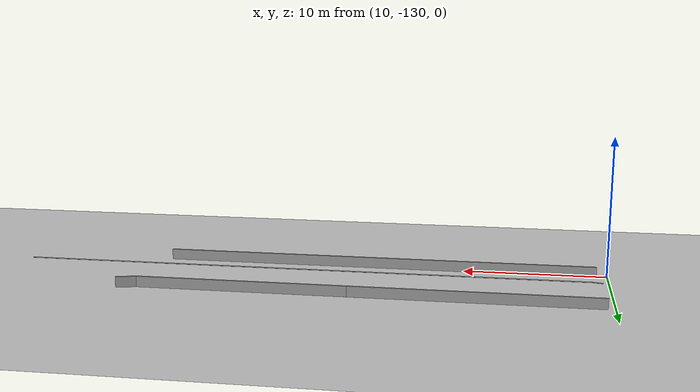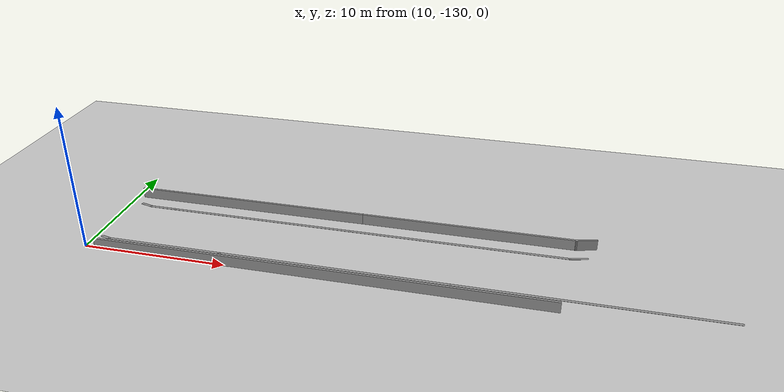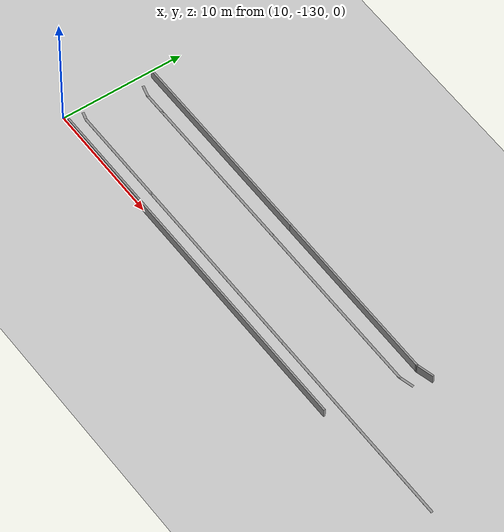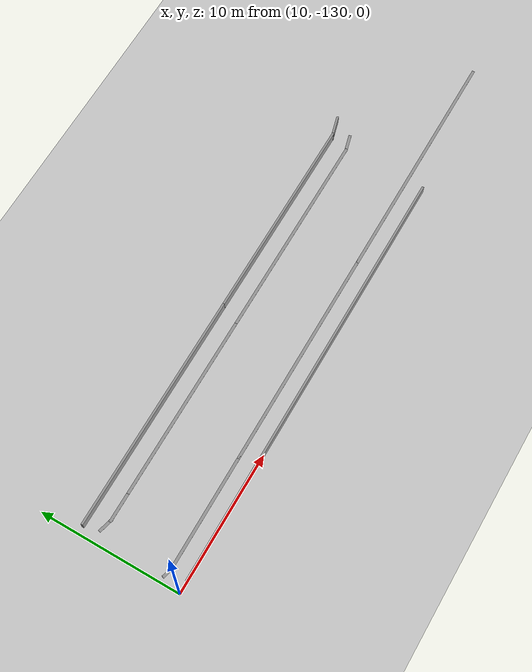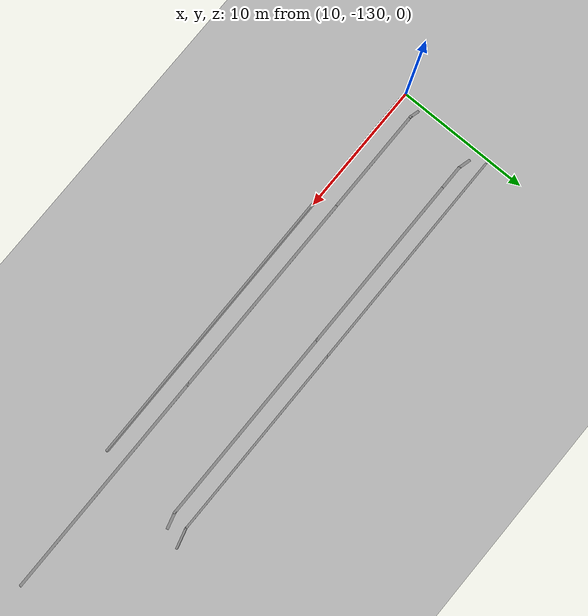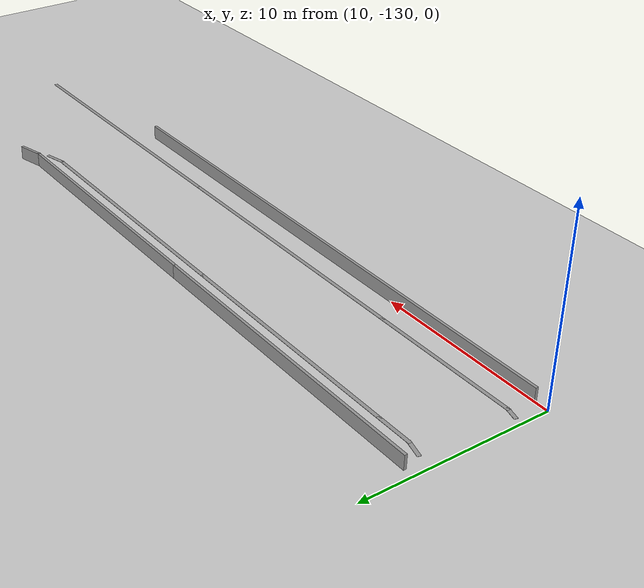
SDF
<sdf version="1.6">
 <world name="default">
  <model name="ground_plane">
   <static>1</static>
   <link name="link">
    <collision name="collision">
     <geometry><plane><normal>0 0 1</normal><size>100 100</size></plane></geometry>
     <surface>
      <contact><collide_bitmask>65535</collide_bitmask></contact>
      <friction><ode><mu>100</mu><mu2>50</mu2></ode></friction>
     </surface>
    </collision>
    <visual name="visual">
     <cast_shadows>0</cast_shadows>
     <geometry><plane><normal>0 0 1</normal><size>100 100</size></plane></geometry>
     <material>
      <script><uri>file://media/materials/scripts/gazebo.material</uri><name>Gazebo/Grey</name></script>
     </material>
    </visual>
   </link>
  </model>
  <model name="GercekDuvarSeritKoyu1">
   <link name="Wall_136">
    <pose>67.9791 -41.0376 0 0 -0 1.5708</pose>
    <inertial>
     <mass>1</mass>
     <inertia><ixx>1</ixx><ixy>0</ixy><ixz>0</ixz><iyy>1</iyy><iyz>0</iyz><izz>1</izz></inertia>
    </inertial>
    <visual name="Wall_136_Visual">
     <pose>0 0 0.375 0 -0 0</pose>
     <geometry><box><size>17 0.15 0.75</size></box></geometry>
     <material>
      <script><uri>file://media/materials/scripts/gazebo.material</uri><name>Gazebo/Grey</name></script>
      <ambient>0.5 0.5 0.5 1</ambient>
      <shader type="pixel"><normal_map>__default__</normal_map></shader>
      <diffuse>0.7 0.7 0.7 1</diffuse>
      <specular>0.01 0.01 0.01 1</specular>
      <emissive>0 0 0 1</emissive>
     </material>
     <meta><layer>0</layer></meta>
    </visual>
    <collision name="Wall_136_Collision">
     <pose>0 0 0.375 0 -0 0</pose>
     <geometry><box><size>17 0.15 0.75</size></box></geometry>
     <surface>
      <friction>
       <ode><mu>1</mu><mu2>1</mu2><fdir1>0 0 0</fdir1><slip1>0</slip1><slip2>0</slip2></ode>
       <torsional>
        <coefficient>1</coefficient>
        <patch_radius>0</patch_radius>
        <surface_radius>0</surface_radius>
        <use_patch_radius>1</use_patch_radius>
        <ode><slip>0</slip></ode>
       </torsional>
      </friction>
      <bounce><restitution_coefficient>0</restitution_coefficient><threshold>1e+06</threshold></bounce>
      <contact>
       <collide_without_contact>0</collide_without_contact>
       <collide_without_contact_bitmask>1</collide_without_contact_bitmask>
       <collide_bitmask>1</collide_bitmask>
       <ode>
        <soft_cfm>0</soft_cfm>
        <soft_erp>0.2</soft_erp>
        <kp>1e+13</kp>
        <kd>1</kd>
        <max_vel>0.01</max_vel>
        <min_depth>0</min_depth>
       </ode>
       <bullet>
        <split_impulse>1</split_impulse>
        <split_impulse_penetration_threshold>-0.01</split_impulse_penetration_threshold>
        <soft_cfm>0</soft_cfm>
        <soft_erp>0.2</soft_erp>
        <kp>1e+13</kp>
        <kd>1</kd>
       </bullet>
      </contact>
     </surface>
    </collision>
   </link>
   <link name="Wall_138">
    <pose>67.9791 -25.3126 0 0 -0 1.5708</pose>
    <inertial>
     <mass>1</mass>
     <inertia><ixx>1</ixx><ixy>0</ixy><ixz>0</ixz><iyy>1</iyy><iyz>0</iyz><izz>1</izz></inertia>
    </inertial>
    <visual name="Wall_138_Visual">
     <pose>0 0 0.375 0 -0 0</pose>
     <geometry><box><size>14.75 0.15 0.75</size></box></geometry>
     <material>
      <script><uri>file://media/materials/scripts/gazebo.material</uri><name>Gazebo/Grey</name></script>
      <ambient>0.5 0.5 0.5 1</ambient>
      <shader type="pixel"><normal_map>__default__</normal_map></shader>
      <diffuse>0.7 0.7 0.7 1</diffuse>
      <specular>0.01 0.01 0.01 1</specular>
      <emissive>0 0 0 1</emissive>
     </material>
     <meta><layer>0</layer></meta>
    </visual>
    <collision name="Wall_138_Collision">
     <pose>0 0 0.375 0 -0 0</pose>
     <geometry><box><size>14.75 0.15 0.75</size></box></geometry>
     <surface>
      <friction>
       <ode><mu>1</mu><mu2>1</mu2><fdir1>0 0 0</fdir1><slip1>0</slip1><slip2>0</slip2></ode>
       <torsional>
        <coefficient>1</coefficient>
        <patch_radius>0</patch_radius>
        <surface_radius>0</surface_radius>
        <use_patch_radius>1</use_patch_radius>
        <ode><slip>0</slip></ode>
       </torsional>
      </friction>
      <bounce><restitution_coefficient>0</restitution_coefficient><threshold>1e+06</threshold></bounce>
      <contact>
       <collide_without_contact>0</collide_without_contact>
       <collide_without_contact_bitmask>1</collide_without_contact_bitmask>
       <collide_bitmask>1</collide_bitmask>
       <ode>
        <soft_cfm>0</soft_cfm>
        <soft_erp>0.2</soft_erp>
        <kp>1e+13</kp>
        <kd>1</kd>
        <max_vel>0.01</max_vel>
        <min_depth>0</min_depth>
       </ode>
       <bullet>
        <split_impulse>1</split_impulse>
        <split_impulse_penetration_threshold>-0.01</split_impulse_penetration_threshold>
        <soft_cfm>0</soft_cfm>
        <soft_erp>0.2</soft_erp>
        <kp>1e+13</kp>
        <kd>1</kd>
       </bullet>
      </contact>
     </surface>
    </collision>
   </link>
   <link name="Wall_140">
    <pose>67.8041 -17.3606 0 0 -0 1.83302</pose>
    <inertial>
     <mass>1</mass>
     <inertia><ixx>1</ixx><ixy>0</ixy><ixz>0</ixz><iyy>1</iyy><iyz>0</iyz><izz>1</izz></inertia>
    </inertial>
    <visual name="Wall_140_Visual">
     <pose>0 0 0.375 0 -0 0</pose>
     <geometry><box><size>1.5 0.15 0.75</size></box></geometry>
     <material>
      <script><uri>file://media/materials/scripts/gazebo.material</uri><name>Gazebo/Grey</name></script>
      <ambient>0.5 0.5 0.5 1</ambient>
      <shader type="pixel"><normal_map>__default__</normal_map></shader>
      <diffuse>0.7 0.7 0.7 1</diffuse>
      <specular>0.01 0.01 0.01 1</specular>
      <emissive>0 0 0 1</emissive>
     </material>
     <meta><layer>0</layer></meta>
    </visual>
    <collision name="Wall_140_Collision">
     <pose>0 0 0.375 0 -0 0</pose>
     <geometry><box><size>1.5 0.15 0.75</size></box></geometry>
     <surface>
      <friction>
       <ode><mu>1</mu><mu2>1</mu2><fdir1>0 0 0</fdir1><slip1>0</slip1><slip2>0</slip2></ode>
       <torsional>
        <coefficient>1</coefficient>
        <patch_radius>0</patch_radius>
        <surface_radius>0</surface_radius>
        <use_patch_radius>1</use_patch_radius>
        <ode><slip>0</slip></ode>
       </torsional>
      </friction>
      <bounce><restitution_coefficient>0</restitution_coefficient><threshold>1e+06</threshold></bounce>
      <contact>
       <collide_without_contact>0</collide_without_contact>
       <collide_without_contact_bitmask>1</collide_without_contact_bitmask>
       <collide_bitmask>1</collide_bitmask>
       <ode>
        <soft_cfm>0</soft_cfm>
        <soft_erp>0.2</soft_erp>
        <kp>1e+13</kp>
        <kd>1</kd>
        <max_vel>0.01</max_vel>
        <min_depth>0</min_depth>
       </ode>
       <bullet>
        <split_impulse>1</split_impulse>
        <split_impulse_penetration_threshold>-0.01</split_impulse_penetration_threshold>
        <soft_cfm>0</soft_cfm>
        <soft_erp>0.2</soft_erp>
        <kp>1e+13</kp>
        <kd>1</kd>
       </bullet>
      </contact>
     </surface>
    </collision>
   </link>
   <link name="Wall_17">
    <pose>75.2501 -33.9316 0 0 -0 1.5708</pose>
    <inertial>
     <mass>1</mass>
     <inertia><ixx>1</ixx><ixy>0</ixy><ixz>0</ixz><iyy>1</iyy><iyz>0</iyz><izz>1</izz></inertia>
    </inertial>
    <visual name="Wall_17_Visual">
     <pose>0 0 0.375 0 -0 0</pose>
     <geometry><box><size>30.75 0.15 0.75</size></box></geometry>
     <material>
      <script><uri>file://media/materials/scripts/gazebo.material</uri><name>Gazebo/Grey</name></script>
      <ambient>0.5 0.5 0.5 1</ambient>
      <shader type="pixel"><normal_map>__default__</normal_map></shader>
      <diffuse>0.7 0.7 0.7 1</diffuse>
      <specular>0.01 0.01 0.01 1</specular>
      <emissive>0 0 0 1</emissive>
     </material>
     <meta><layer>0</layer></meta>
    </visual>
    <collision name="Wall_17_Collision">
     <pose>0 0 0.375 0 -0 0</pose>
     <geometry><box><size>30.75 0.15 0.75</size></box></geometry>
     <surface>
      <friction>
       <ode><mu>1</mu><mu2>1</mu2><fdir1>0 0 0</fdir1><slip1>0</slip1><slip2>0</slip2></ode>
       <torsional>
        <coefficient>1</coefficient>
        <patch_radius>0</patch_radius>
        <surface_radius>0</surface_radius>
        <use_patch_radius>1</use_patch_radius>
        <ode><slip>0</slip></ode>
       </torsional>
      </friction>
      <bounce><restitution_coefficient>0</restitution_coefficient><threshold>1e+06</threshold></bounce>
      <contact>
       <collide_without_contact>0</collide_without_contact>
       <collide_without_contact_bitmask>1</collide_without_contact_bitmask>
       <collide_bitmask>1</collide_bitmask>
       <ode>
        <soft_cfm>0</soft_cfm>
        <soft_erp>0.2</soft_erp>
        <kp>1e+13</kp>
        <kd>1</kd>
        <max_vel>0.01</max_vel>
        <min_depth>0</min_depth>
       </ode>
       <bullet>
        <split_impulse>1</split_impulse>
        <split_impulse_penetration_threshold>-0.01</split_impulse_penetration_threshold>
        <soft_cfm>0</soft_cfm>
        <soft_erp>0.2</soft_erp>
        <kp>1e+13</kp>
        <kd>1</kd>
       </bullet>
      </contact>
     </surface>
    </collision>
   </link>
   <link name="Wall_257">
    <pose>73.8996 -49.2906 0 0 -0 1.30966</pose>
    <visual name="Wall_257_Visual">
     <pose>0 0 0.005 0 -0 0</pose>
     <geometry><box><size>0.800673 0.2 0.01</size></box></geometry>
     <material>
      <script><uri>file://media/materials/scripts/gazebo.material</uri><name>Gazebo/Grey</name></script>
      <ambient>1 1 1 1</ambient>
      <shader type="pixel"/>
     </material>
     <meta><layer>0</layer></meta>
    </visual>
    <collision name="Wall_257_Collision">
     <pose>0 0 0.005 0 -0 0</pose>
     <geometry><box><size>0.800673 0.2 0.01</size></box></geometry>
     <surface>
      <friction>
       <ode><mu>1</mu><mu2>1</mu2><fdir1>0 0 0</fdir1><slip1>0</slip1><slip2>0</slip2></ode>
       <torsional>
        <coefficient>1</coefficient>
        <patch_radius>0</patch_radius>
        <surface_radius>0</surface_radius>
        <use_patch_radius>1</use_patch_radius>
        <ode><slip>0</slip></ode>
       </torsional>
      </friction>
      <bounce><restitution_coefficient>0</restitution_coefficient><threshold>1e+06</threshold></bounce>
      <contact>
       <collide_without_contact>0</collide_without_contact>
       <collide_without_contact_bitmask>1</collide_without_contact_bitmask>
       <collide_bitmask>1</collide_bitmask>
       <ode>
        <soft_cfm>0</soft_cfm>
        <soft_erp>0.2</soft_erp>
        <kp>1e+13</kp>
        <kd>1</kd>
        <max_vel>0.01</max_vel>
        <min_depth>0</min_depth>
       </ode>
       <bullet>
        <split_impulse>1</split_impulse>
        <split_impulse_penetration_threshold>-0.01</split_impulse_penetration_threshold>
        <soft_cfm>0</soft_cfm>
        <soft_erp>0.2</soft_erp>
        <kp>1e+13</kp>
        <kd>1</kd>
       </bullet>
      </contact>
     </surface>
    </collision>
   </link>
   <link name="Wall_258">
    <pose>73.9771 -44.9621 0 0 -0 1.5708</pose>
    <visual name="Wall_258_Visual">
     <pose>0 0 0.005 0 -0 0</pose>
     <geometry><box><size>8.277 0.2 0.01</size></box></geometry>
     <material>
      <script><uri>file://media/materials/scripts/gazebo.material</uri><name>Gazebo/Grey</name></script>
      <ambient>1 1 1 1</ambient>
      <shader type="pixel"/>
     </material>
     <meta><layer>0</layer></meta>
    </visual>
    <collision name="Wall_258_Collision">
     <pose>0 0 0.005 0 -0 0</pose>
     <geometry><box><size>8.277 0.2 0.01</size></box></geometry>
     <surface>
      <friction>
       <ode><mu>1</mu><mu2>1</mu2><fdir1>0 0 0</fdir1><slip1>0</slip1><slip2>0</slip2></ode>
       <torsional>
        <coefficient>1</coefficient>
        <patch_radius>0</patch_radius>
        <surface_radius>0</surface_radius>
        <use_patch_radius>1</use_patch_radius>
        <ode><slip>0</slip></ode>
       </torsional>
      </friction>
      <bounce><restitution_coefficient>0</restitution_coefficient><threshold>1e+06</threshold></bounce>
      <contact>
       <collide_without_contact>0</collide_without_contact>
       <collide_without_contact_bitmask>1</collide_without_contact_bitmask>
       <collide_bitmask>1</collide_bitmask>
       <ode>
        <soft_cfm>0</soft_cfm>
        <soft_erp>0.2</soft_erp>
        <kp>1e+13</kp>
        <kd>1</kd>
        <max_vel>0.01</max_vel>
        <min_depth>0</min_depth>
       </ode>
       <bullet>
        <split_impulse>1</split_impulse>
        <split_impulse_penetration_threshold>-0.01</split_impulse_penetration_threshold>
        <soft_cfm>0</soft_cfm>
        <soft_erp>0.2</soft_erp>
        <kp>1e+13</kp>
        <kd>1</kd>
       </bullet>
      </contact>
     </surface>
    </collision>
   </link>
   <link name="Wall_260">
    <pose>73.9771 -33.1236 0 0 -0 1.5708</pose>
    <visual name="Wall_260_Visual">
     <pose>0 0 0.005 0 -0 0</pose>
     <geometry><box><size>15.8 0.2 0.01</size></box></geometry>
     <material>
      <script><uri>file://media/materials/scripts/gazebo.material</uri><name>Gazebo/Grey</name></script>
      <ambient>1 1 1 1</ambient>
      <shader type="pixel"/>
     </material>
     <meta><layer>0</layer></meta>
    </visual>
    <collision name="Wall_260_Collision">
     <pose>0 0 0.005 0 -0 0</pose>
     <geometry><box><size>15.8 0.2 0.01</size></box></geometry>
     <surface>
      <friction>
       <ode><mu>1</mu><mu2>1</mu2><fdir1>0 0 0</fdir1><slip1>0</slip1><slip2>0</slip2></ode>
       <torsional>
        <coefficient>1</coefficient>
        <patch_radius>0</patch_radius>
        <surface_radius>0</surface_radius>
        <use_patch_radius>1</use_patch_radius>
        <ode><slip>0</slip></ode>
       </torsional>
      </friction>
      <bounce><restitution_coefficient>0</restitution_coefficient><threshold>1e+06</threshold></bounce>
      <contact>
       <collide_without_contact>0</collide_without_contact>
       <collide_without_contact_bitmask>1</collide_without_contact_bitmask>
       <collide_bitmask>1</collide_bitmask>
       <ode>
        <soft_cfm>0</soft_cfm>
        <soft_erp>0.2</soft_erp>
        <kp>1e+13</kp>
        <kd>1</kd>
        <max_vel>0.01</max_vel>
        <min_depth>0</min_depth>
       </ode>
       <bullet>
        <split_impulse>1</split_impulse>
        <split_impulse_penetration_threshold>-0.01</split_impulse_penetration_threshold>
        <soft_cfm>0</soft_cfm>
        <soft_erp>0.2</soft_erp>
        <kp>1e+13</kp>
        <kd>1</kd>
       </bullet>
      </contact>
     </surface>
    </collision>
   </link>
   <link name="Wall_262">
    <pose>73.9771 -16.7736 0 0 -0 1.5708</pose>
    <visual name="Wall_262_Visual">
     <pose>0 0 0.005 0 -0 0</pose>
     <geometry><box><size>17.3 0.2 0.01</size></box></geometry>
     <material>
      <script><uri>file://media/materials/scripts/gazebo.material</uri><name>Gazebo/Grey</name></script>
      <ambient>1 1 1 1</ambient>
      <shader type="pixel"/>
     </material>
     <meta><layer>0</layer></meta>
    </visual>
    <collision name="Wall_262_Collision">
     <pose>0 0 0.005 0 -0 0</pose>
     <geometry><box><size>17.3 0.2 0.01</size></box></geometry>
     <surface>
      <friction>
       <ode><mu>1</mu><mu2>1</mu2><fdir1>0 0 0</fdir1><slip1>0</slip1><slip2>0</slip2></ode>
       <torsional>
        <coefficient>1</coefficient>
        <patch_radius>0</patch_radius>
        <surface_radius>0</surface_radius>
        <use_patch_radius>1</use_patch_radius>
        <ode><slip>0</slip></ode>
       </torsional>
      </friction>
      <bounce><restitution_coefficient>0</restitution_coefficient><threshold>1e+06</threshold></bounce>
      <contact>
       <collide_without_contact>0</collide_without_contact>
       <collide_without_contact_bitmask>1</collide_without_contact_bitmask>
       <collide_bitmask>1</collide_bitmask>
       <ode>
        <soft_cfm>0</soft_cfm>
        <soft_erp>0.2</soft_erp>
        <kp>1e+13</kp>
        <kd>1</kd>
        <max_vel>0.01</max_vel>
        <min_depth>0</min_depth>
       </ode>
       <bullet>
        <split_impulse>1</split_impulse>
        <split_impulse_penetration_threshold>-0.01</split_impulse_penetration_threshold>
        <soft_cfm>0</soft_cfm>
        <soft_erp>0.2</soft_erp>
        <kp>1e+13</kp>
        <kd>1</kd>
       </bullet>
      </contact>
     </surface>
    </collision>
   </link>
   <link name="Wall_433">
    <pose>69.1051 -48.7401 0 0 -0 1.30898</pose>
    <visual name="Wall_433_Visual">
     <pose>0 0 0.005 0 -0 0</pose>
     <geometry><box><size>1.04998 0.2 0.01</size></box></geometry>
     <material>
      <script><uri>file://media/materials/scripts/gazebo.material</uri><name>Gazebo/Grey</name></script>
      <ambient>1 1 1 1</ambient>
      <shader type="pixel"/>
     </material>
     <meta><layer>0</layer></meta>
    </visual>
    <collision name="Wall_433_Collision">
     <pose>0 0 0.005 0 -0 0</pose>
     <geometry><box><size>1.04998 0.2 0.01</size></box></geometry>
     <surface>
      <friction>
       <ode><mu>1</mu><mu2>1</mu2><fdir1>0 0 0</fdir1><slip1>0</slip1><slip2>0</slip2></ode>
       <torsional>
        <coefficient>1</coefficient>
        <patch_radius>0</patch_radius>
        <surface_radius>0</surface_radius>
        <use_patch_radius>1</use_patch_radius>
        <ode><slip>0</slip></ode>
       </torsional>
      </friction>
      <bounce><restitution_coefficient>0</restitution_coefficient><threshold>1e+06</threshold></bounce>
      <contact>
       <collide_without_contact>0</collide_without_contact>
       <collide_without_contact_bitmask>1</collide_without_contact_bitmask>
       <collide_bitmask>1</collide_bitmask>
       <ode>
        <soft_cfm>0</soft_cfm>
        <soft_erp>0.2</soft_erp>
        <kp>1e+13</kp>
        <kd>1</kd>
        <max_vel>0.01</max_vel>
        <min_depth>0</min_depth>
       </ode>
       <bullet>
        <split_impulse>1</split_impulse>
        <split_impulse_penetration_threshold>-0.01</split_impulse_penetration_threshold>
        <soft_cfm>0</soft_cfm>
        <soft_erp>0.2</soft_erp>
        <kp>1e+13</kp>
        <kd>1</kd>
       </bullet>
      </contact>
     </surface>
    </collision>
   </link>
   <link name="Wall_434">
    <pose>69.2151 -47.4046 0 0 -0 1.5708</pose>
    <visual name="Wall_434_Visual">
     <pose>0 0 0.005 0 -0 0</pose>
     <geometry><box><size>2.05 0.2 0.01</size></box></geometry>
     <material>
      <script><uri>file://media/materials/scripts/gazebo.material</uri><name>Gazebo/Grey</name></script>
      <ambient>1 1 1 1</ambient>
      <shader type="pixel"/>
     </material>
     <meta><layer>0</layer></meta>
    </visual>
    <collision name="Wall_434_Collision">
     <pose>0 0 0.005 0 -0 0</pose>
     <geometry><box><size>2.05 0.2 0.01</size></box></geometry>
     <surface>
      <friction>
       <ode><mu>1</mu><mu2>1</mu2><fdir1>0 0 0</fdir1><slip1>0</slip1><slip2>0</slip2></ode>
       <torsional>
        <coefficient>1</coefficient>
        <patch_radius>0</patch_radius>
        <surface_radius>0</surface_radius>
        <use_patch_radius>1</use_patch_radius>
        <ode><slip>0</slip></ode>
       </torsional>
      </friction>
      <bounce><restitution_coefficient>0</restitution_coefficient><threshold>1e+06</threshold></bounce>
      <contact>
       <collide_without_contact>0</collide_without_contact>
       <collide_without_contact_bitmask>1</collide_without_contact_bitmask>
       <collide_bitmask>1</collide_bitmask>
       <ode>
        <soft_cfm>0</soft_cfm>
        <soft_erp>0.2</soft_erp>
        <kp>1e+13</kp>
        <kd>1</kd>
        <max_vel>0.01</max_vel>
        <min_depth>0</min_depth>
       </ode>
       <bullet>
        <split_impulse>1</split_impulse>
        <split_impulse_penetration_threshold>-0.01</split_impulse_penetration_threshold>
        <soft_cfm>0</soft_cfm>
        <soft_erp>0.2</soft_erp>
        <kp>1e+13</kp>
        <kd>1</kd>
       </bullet>
      </contact>
     </surface>
    </collision>
   </link>
   <link name="Wall_436">
    <pose>69.2151 -39.8046 0 0 -0 1.5708</pose>
    <visual name="Wall_436_Visual">
     <pose>0 0 0.005 0 -0 0</pose>
     <geometry><box><size>13.55 0.2 0.01</size></box></geometry>
     <material>
      <script><uri>file://media/materials/scripts/gazebo.material</uri><name>Gazebo/Grey</name></script>
      <ambient>1 1 1 1</ambient>
      <shader type="pixel"/>
     </material>
     <meta><layer>0</layer></meta>
    </visual>
    <collision name="Wall_436_Collision">
     <pose>0 0 0.005 0 -0 0</pose>
     <geometry><box><size>13.55 0.2 0.01</size></box></geometry>
     <surface>
      <friction>
       <ode><mu>1</mu><mu2>1</mu2><fdir1>0 0 0</fdir1><slip1>0</slip1><slip2>0</slip2></ode>
       <torsional>
        <coefficient>1</coefficient>
        <patch_radius>0</patch_radius>
        <surface_radius>0</surface_radius>
        <use_patch_radius>1</use_patch_radius>
        <ode><slip>0</slip></ode>
       </torsional>
      </friction>
      <bounce><restitution_coefficient>0</restitution_coefficient><threshold>1e+06</threshold></bounce>
      <contact>
       <collide_without_contact>0</collide_without_contact>
       <collide_without_contact_bitmask>1</collide_without_contact_bitmask>
       <collide_bitmask>1</collide_bitmask>
       <ode>
        <soft_cfm>0</soft_cfm>
        <soft_erp>0.2</soft_erp>
        <kp>1e+13</kp>
        <kd>1</kd>
        <max_vel>0.01</max_vel>
        <min_depth>0</min_depth>
       </ode>
       <bullet>
        <split_impulse>1</split_impulse>
        <split_impulse_penetration_threshold>-0.01</split_impulse_penetration_threshold>
        <soft_cfm>0</soft_cfm>
        <soft_erp>0.2</soft_erp>
        <kp>1e+13</kp>
        <kd>1</kd>
       </bullet>
      </contact>
     </surface>
    </collision>
   </link>
   <link name="Wall_438">
    <pose>69.2151 -25.7046 0 0 -0 1.5708</pose>
    <visual name="Wall_438_Visual">
     <pose>0 0 0.005 0 -0 0</pose>
     <geometry><box><size>15.05 0.2 0.01</size></box></geometry>
     <material>
      <script><uri>file://media/materials/scripts/gazebo.material</uri><name>Gazebo/Grey</name></script>
      <ambient>1 1 1 1</ambient>
      <shader type="pixel"/>
     </material>
     <meta><layer>0</layer></meta>
    </visual>
    <collision name="Wall_438_Collision">
     <pose>0 0 0.005 0 -0 0</pose>
     <geometry><box><size>15.05 0.2 0.01</size></box></geometry>
     <surface>
      <friction>
       <ode><mu>1</mu><mu2>1</mu2><fdir1>0 0 0</fdir1><slip1>0</slip1><slip2>0</slip2></ode>
       <torsional>
        <coefficient>1</coefficient>
        <patch_radius>0</patch_radius>
        <surface_radius>0</surface_radius>
        <use_patch_radius>1</use_patch_radius>
        <ode><slip>0</slip></ode>
       </torsional>
      </friction>
      <bounce><restitution_coefficient>0</restitution_coefficient><threshold>1e+06</threshold></bounce>
      <contact>
       <collide_without_contact>0</collide_without_contact>
       <collide_without_contact_bitmask>1</collide_without_contact_bitmask>
       <collide_bitmask>1</collide_bitmask>
       <ode>
        <soft_cfm>0</soft_cfm>
        <soft_erp>0.2</soft_erp>
        <kp>1e+13</kp>
        <kd>1</kd>
        <max_vel>0.01</max_vel>
        <min_depth>0</min_depth>
       </ode>
       <bullet>
        <split_impulse>1</split_impulse>
        <split_impulse_penetration_threshold>-0.01</split_impulse_penetration_threshold>
        <soft_cfm>0</soft_cfm>
        <soft_erp>0.2</soft_erp>
        <kp>1e+13</kp>
        <kd>1</kd>
       </bullet>
      </contact>
     </surface>
    </collision>
   </link>
   <link name="Wall_440">
    <pose>69.0726 -17.7481 0 0 -0 1.83275</pose>
    <visual name="Wall_440_Visual">
     <pose>0 0 0.005 0 -0 0</pose>
     <geometry><box><size>1.29999 0.2 0.01</size></box></geometry>
     <material>
      <script><uri>file://media/materials/scripts/gazebo.material</uri><name>Gazebo/Grey</name></script>
      <ambient>1 1 1 1</ambient>
      <shader type="pixel"/>
     </material>
     <meta><layer>0</layer></meta>
    </visual>
    <collision name="Wall_440_Collision">
     <pose>0 0 0.005 0 -0 0</pose>
     <geometry><box><size>1.29999 0.2 0.01</size></box></geometry>
     <surface>
      <friction>
       <ode><mu>1</mu><mu2>1</mu2><fdir1>0 0 0</fdir1><slip1>0</slip1><slip2>0</slip2></ode>
       <torsional>
        <coefficient>1</coefficient>
        <patch_radius>0</patch_radius>
        <surface_radius>0</surface_radius>
        <use_patch_radius>1</use_patch_radius>
        <ode><slip>0</slip></ode>
       </torsional>
      </friction>
      <bounce><restitution_coefficient>0</restitution_coefficient><threshold>1e+06</threshold></bounce>
      <contact>
       <collide_without_contact>0</collide_without_contact>
       <collide_without_contact_bitmask>1</collide_without_contact_bitmask>
       <collide_bitmask>1</collide_bitmask>
       <ode>
        <soft_cfm>0</soft_cfm>
        <soft_erp>0.2</soft_erp>
        <kp>1e+13</kp>
        <kd>1</kd>
        <max_vel>0.01</max_vel>
        <min_depth>0</min_depth>
       </ode>
       <bullet>
        <split_impulse>1</split_impulse>
        <split_impulse_penetration_threshold>-0.01</split_impulse_penetration_threshold>
        <soft_cfm>0</soft_cfm>
        <soft_erp>0.2</soft_erp>
        <kp>1e+13</kp>
        <kd>1</kd>
       </bullet>
      </contact>
     </surface>
    </collision>
   </link>
   <static>1</static>
   <pose>59.9324 -54.7034 -0 0 0 -1.5695</pose>
  </model>
 </world>
</sdf>
